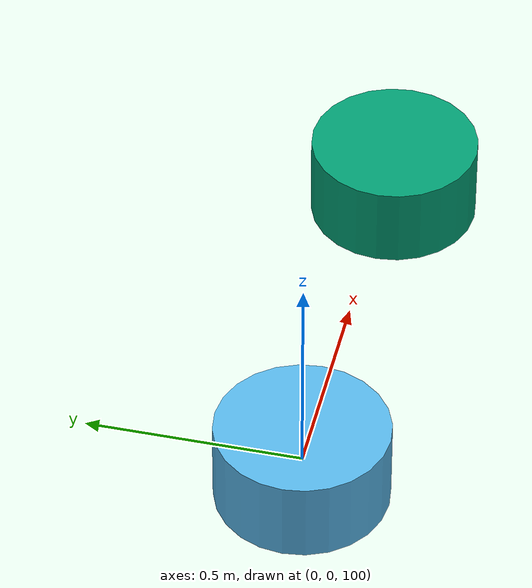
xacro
<?xml version="1.0"?>
<robot name="box" xmlns:xacro="http://www.ros.org/wiki/xacro">
<link name="world"/>

<joint name="float" type="floating">
	<parent link="world"/>
	<child link="box"/>
</joint>
<link name="box">
	<collision>
		<origin xyz="0 0 100" rpy="0 0 0"/>
		<geometry>
			<cylinder length="0.2" radius="0.2"/>
		</geometry>
	</collision>
	<visual>
		<origin xyz="0 0 100" rpy="0 0 0"/>
		<geometry>
			<cylinder length="0.2" radius="0.2"/>
		</geometry>
	</visual>
	<inertial>
		<origin xyz="0 0 100" rpy="0 0 0"/>
		<mass value="1.0"/>
		<inertia ixx="1.0" ixy="0.0" ixz="0.0" iyy="1.0" iyz="0.0" izz="1.0"/>
	</inertial>
</link>

<link name="abox">
	<collision>
		<origin xyz="1 0 100" rpy="0 0 0"/>
		<geometry>
			<cylinder length="0.2" radius="0.2"/>
		</geometry>
	</collision>
	<visual>
		<origin xyz="1 0 100" rpy="0 0 0"/>
		<geometry>
			<cylinder length="0.2" radius="0.2"/>
		</geometry>
	</visual>
	<inertial>
		<origin xyz="1 0 100" rpy="0 0 0"/>
		<mass value="1.0"/>
		<inertia ixx="1.0" ixy="0.0" ixz="0.0" iyy="1.0" iyz="0.0" izz="1.0"/>
	</inertial>
</link>
<joint name="j1" type="continuous">
	<origin xyz="0 0 0" rpy="0 0 0"/>
	<parent link="box"/>
	<child link="abox"/>
	<axis xyz="1 0 0"/>
</joint>
</robot>
